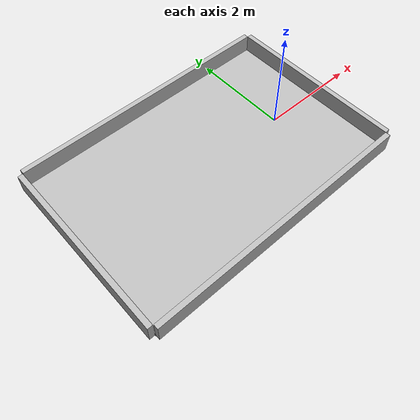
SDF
<?xml version='1.0'?>
<sdf version='1.4'>

  <model name="field">
    <static>true</static>
    <pose>0 0 0 0 0 0</pose>
    <link name="floor">
     <visual name="floor">
        <pose>-1.7 0 0.01 0 0 0</pose>
        <cast_shadows>false</cast_shadows>
        <geometry>
          <box>
            <size>5.4 3.6 0.1</size>
          </box>
        </geometry>
      </visual>
      <collision name="floor_collision">
        <pose>-1.7 0 0.01 0 0 0</pose>
        <geometry>
          <box>
            <size>5.4 3.6 0.1</size>
          </box>
        </geometry>
      </collision>
    </link>
    <link name="east_wall">
     <visual name="east_wall">
        <pose>-1.7 -1.85 0.22 0 0 0</pose>
        <cast_shadows>false</cast_shadows>
        <geometry>
          <box>
            <size>5.4 0.1 0.4</size>
          </box>
        </geometry>
      </visual>
      <collision name="east_wall_collision">
        <pose>-1.7 -1.85 0.22 0 0 0</pose>
        <geometry>
          <box>
            <size>0.2 3.6 0.4</size>
          </box>
        </geometry>
      </collision>
    </link>
    <link name="west_wall">
     <visual name="west_wall">
        <pose>-1.7 1.85 0.22 0 0 0</pose>
        <cast_shadows>false</cast_shadows>
        <geometry>
          <box>
            <size>5.4 0.1 0.4</size>
          </box>
        </geometry>
      </visual>
      <collision name="west_wall_collision">
        <pose>-1.7 1.85 0.22 0 0 0</pose>
        <geometry>
          <box>
            <size>0.2 3.6 0.4</size>
          </box>
        </geometry>
      </collision>
    </link>
    <link name="south_wall">
     <visual name="south_wall">
        <pose>1.05 0 0.22 0 0 0</pose>
        <cast_shadows>false</cast_shadows>
        <geometry>
          <box>
            <size>0.1 3.6 0.4</size>
          </box>
        </geometry>
      </visual>
      <collision name="south_wall_collision">
        <pose>1.05 0 0.22 0 0 0</pose>
        <geometry>
          <box>
            <size>0.1 3.6 0.4</size>
          </box>
        </geometry>
      </collision>
    </link>
    <link name="north_wall">
     <visual name="north_wall">
        <pose>-4.46 0 0.22 0 0 0</pose>
        <cast_shadows>false</cast_shadows>
        <geometry>
          <box>
            <size>0.1 3.6 0.4</size>
          </box>
        </geometry>
      </visual>
      <collision name="north_wall_collision">
        <pose>-4.46 0 0.22 0 0 0</pose>
        <geometry>
          <box>
            <size>0.1 3.6 0.4</size>
          </box>
        </geometry>
      </collision>
    </link>
  </model>
</sdf>
